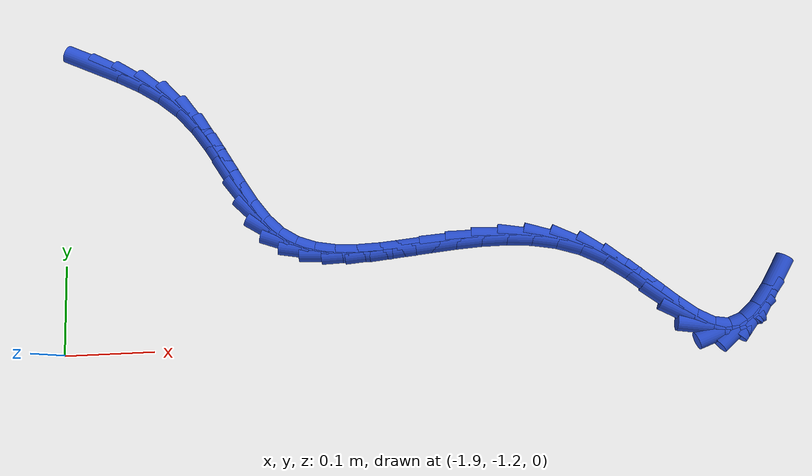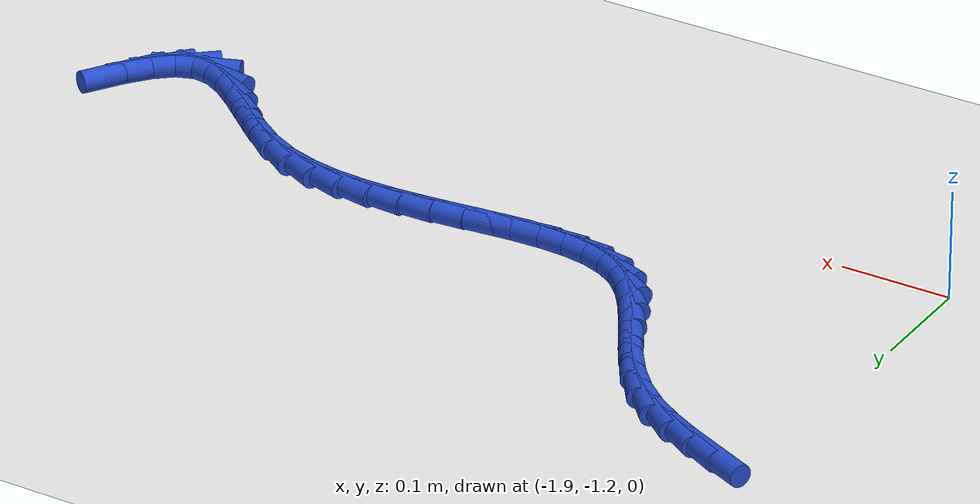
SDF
<sdf version="1.6">
 <world name="default">
  <model name="ground_plane">
   <static>1</static>
   <link name="link">
    <collision name="collision">
     <geometry><plane><normal>0 0 1</normal><size>100 100</size></plane></geometry>
     <surface><friction><ode><mu>100</mu><mu2>50</mu2></ode></friction></surface>
    </collision>
    <visual name="visual">
     <cast_shadows>0</cast_shadows>
     <geometry><plane><normal>0 0 1</normal><size>100 100</size></plane></geometry>
     <material>
      <script><uri>file://media/materials/scripts/gazebo.material</uri><name>Gazebo/WhiteGlow</name></script>
     </material>
    </visual>
   </link>
  </model>
  <model name="line">
   <link name="link_176">
    <pose>-1.8645679588360216 -0.8669915331067609 0.01 0 1.57 -0.4247493217006784</pose>
    <collision name="collision">
     <geometry><cylinder><radius>0.01</radius><length>0.08</length></cylinder></geometry>
    </collision>
    <visual name="visual">
     <material>
      <script><name>Gazebo/Blue</name><uri>file://media/materials/scripts/gazebo.material</uri></script>
     </material>
     <geometry><cylinder><radius>0.01</radius><length>0.08</length></cylinder></geometry>
    </visual>
   </link>
   <link name="link_177">
    <pose>-1.8382331646155368 -0.8789022644264692 0.01 0 1.57 -0.47703535431696337</pose>
    <collision name="collision">
     <geometry><cylinder><radius>0.01</radius><length>0.08</length></cylinder></geometry>
    </collision>
    <visual name="visual">
     <material>
      <script><name>Gazebo/Blue</name><uri>file://media/materials/scripts/gazebo.material</uri></script>
     </material>
     <geometry><cylinder><radius>0.01</radius><length>0.08</length></cylinder></geometry>
    </visual>
   </link>
   <link name="link_178">
    <pose>-1.8126612451884712 -0.8921190718512182 0.01 0 1.57 -0.5641950752193319</pose>
    <collision name="collision">
     <geometry><cylinder><radius>0.01</radius><length>0.08</length></cylinder></geometry>
    </collision>
    <visual name="visual">
     <material>
      <script><name>Gazebo/Blue</name><uri>file://media/materials/scripts/gazebo.material</uri></script>
     </material>
     <geometry><cylinder><radius>0.01</radius><length>0.08</length></cylinder></geometry>
    </visual>
   </link>
   <link name="link_179">
    <pose>-1.7886581681276514 -0.9073084349439857 0.01 0 1.57 -0.6893893840906471</pose>
    <collision name="collision">
     <geometry><cylinder><radius>0.01</radius><length>0.08</length></cylinder></geometry>
    </collision>
    <visual name="visual">
     <material>
      <script><name>Gazebo/Blue</name><uri>file://media/materials/scripts/gazebo.material</uri></script>
     </material>
     <geometry><cylinder><radius>0.01</radius><length>0.08</length></cylinder></geometry>
    </visual>
   </link>
   <link name="link_180">
    <pose>-1.7670299010059074 -0.9251368332677505 0.01 0 1.57 -0.8392473526510661</pose>
    <collision name="collision">
     <geometry><cylinder><radius>0.01</radius><length>0.08</length></cylinder></geometry>
    </collision>
    <visual name="visual">
     <material>
      <script><name>Gazebo/Blue</name><uri>file://media/materials/scripts/gazebo.material</uri></script>
     </material>
     <geometry><cylinder><radius>0.01</radius><length>0.08</length></cylinder></geometry>
    </visual>
   </link>
   <link name="link_181">
    <pose>-1.7483223331746092 -0.9459760226926984 0.01 0 1.57 -0.9537539241541084</pose>
    <collision name="collision">
     <geometry><cylinder><radius>0.01</radius><length>0.08</length></cylinder></geometry>
    </collision>
    <visual name="visual">
     <material>
      <script><name>Gazebo/Blue</name><uri>file://media/materials/scripts/gazebo.material</uri></script>
     </material>
     <geometry><cylinder><radius>0.01</radius><length>0.08</length></cylinder></geometry>
    </visual>
   </link>
   <link name="link_182">
    <pose>-1.7320041607804846 -0.9689770711077332 0.01 0 1.57 -1.020020391745977</pose>
    <collision name="collision">
     <geometry><cylinder><radius>0.01</radius><length>0.08</length></cylinder></geometry>
    </collision>
    <visual name="visual">
     <material>
      <script><name>Gazebo/Blue</name><uri>file://media/materials/scripts/gazebo.material</uri></script>
     </material>
     <geometry><cylinder><radius>0.01</radius><length>0.08</length></cylinder></geometry>
    </visual>
   </link>
   <link name="link_183">
    <pose>-1.7172652370645718 -0.9929750583485786 0.01 0 1.57 -1.0405646668804494</pose>
    <collision name="collision">
     <geometry><cylinder><radius>0.01</radius><length>0.08</length></cylinder></geometry>
    </collision>
    <visual name="visual">
     <material>
      <script><name>Gazebo/Blue</name><uri>file://media/materials/scripts/gazebo.material</uri></script>
     </material>
     <geometry><cylinder><radius>0.01</radius><length>0.08</length></cylinder></geometry>
    </visual>
   </link>
   <link name="link_184">
    <pose>-1.7032954148462254 -1.0168050637731003 0.01 0 1.57 -1.0137910978690958</pose>
    <collision name="collision">
     <geometry><cylinder><radius>0.01</radius><length>0.08</length></cylinder></geometry>
    </collision>
    <visual name="visual">
     <material>
      <script><name>Gazebo/Blue</name><uri>file://media/materials/scripts/gazebo.material</uri></script>
     </material>
     <geometry><cylinder><radius>0.01</radius><length>0.08</length></cylinder></geometry>
    </visual>
   </link>
   <link name="link_185">
    <pose>-1.689284546944802 -1.039302166739165 0.01 0 1.57 -0.9317066677133115</pose>
    <collision name="collision">
     <geometry><cylinder><radius>0.01</radius><length>0.08</length></cylinder></geometry>
    </collision>
    <visual name="visual">
     <material>
      <script><name>Gazebo/Blue</name><uri>file://media/materials/scripts/gazebo.material</uri></script>
     </material>
     <geometry><cylinder><radius>0.01</radius><length>0.08</length></cylinder></geometry>
    </visual>
   </link>
   <link name="link_186">
    <pose>-1.674422486179656 -1.0593014466046387 0.01 0 1.57 -0.7797115221578698</pose>
    <collision name="collision">
     <geometry><cylinder><radius>0.01</radius><length>0.08</length></cylinder></geometry>
    </collision>
    <visual name="visual">
     <material>
      <script><name>Gazebo/Blue</name><uri>file://media/materials/scripts/gazebo.material</uri></script>
     </material>
     <geometry><cylinder><radius>0.01</radius><length>0.08</length></cylinder></geometry>
    </visual>
   </link>
   <link name="link_187">
    <pose>-1.6578990853701436 -1.0756379827273879 0.01 0 1.57 -0.5574876637310547</pose>
    <collision name="collision">
     <geometry><cylinder><radius>0.01</radius><length>0.08</length></cylinder></geometry>
    </collision>
    <visual name="visual">
     <material>
      <script><name>Gazebo/Blue</name><uri>file://media/materials/scripts/gazebo.material</uri></script>
     </material>
     <geometry><cylinder><radius>0.01</radius><length>0.08</length></cylinder></geometry>
    </visual>
   </link>
   <link name="link_188">
    <pose>-1.6390459676303692 -1.0873920566819728 0.01 0 1.57 -0.3410835000995765</pose>
    <collision name="collision">
     <geometry><cylinder><radius>0.01</radius><length>0.08</length></cylinder></geometry>
    </collision>
    <visual name="visual">
     <material>
      <script><name>Gazebo/Blue</name><uri>file://media/materials/scripts/gazebo.material</uri></script>
     </material>
     <geometry><cylinder><radius>0.01</radius><length>0.08</length></cylinder></geometry>
    </visual>
   </link>
   <link name="link_189">
    <pose>-1.6179164219875033 -1.094892124647576 0.01 0 1.57 -0.17005681047597512</pose>
    <collision name="collision">
     <geometry><cylinder><radius>0.01</radius><length>0.08</length></cylinder></geometry>
    </collision>
    <visual name="visual">
     <material>
      <script><name>Gazebo/Blue</name><uri>file://media/materials/scripts/gazebo.material</uri></script>
     </material>
     <geometry><cylinder><radius>0.01</radius><length>0.08</length></cylinder></geometry>
    </visual>
   </link>
   <link name="link_190">
    <pose>-1.5947927900579701 -1.0988628062078818 0.01 0 1.57 -0.046917950597219815</pose>
    <collision name="collision">
     <geometry><cylinder><radius>0.01</radius><length>0.08</length></cylinder></geometry>
    </collision>
    <visual name="visual">
     <material>
      <script><name>Gazebo/Blue</name><uri>file://media/materials/scripts/gazebo.material</uri></script>
     </material>
     <geometry><cylinder><radius>0.01</radius><length>0.08</length></cylinder></geometry>
    </visual>
   </link>
   <link name="link_191">
    <pose>-1.5699575068922942 -1.10002888254776 0.01 0 1.57 0.03477619339295823</pose>
    <collision name="collision">
     <geometry><cylinder><radius>0.01</radius><length>0.08</length></cylinder></geometry>
    </collision>
    <visual name="visual">
     <material>
      <script><name>Gazebo/Blue</name><uri>file://media/materials/scripts/gazebo.material</uri></script>
     </material>
     <geometry><cylinder><radius>0.01</radius><length>0.08</length></cylinder></geometry>
    </visual>
   </link>
   <link name="link_192">
    <pose>-1.543693007540998 -1.0991151348520802 0.01 0 1.57 0.08258026697627965</pose>
    <collision name="collision">
     <geometry><cylinder><radius>0.01</radius><length>0.08</length></cylinder></geometry>
    </collision>
    <visual name="visual">
     <material>
      <script><name>Gazebo/Blue</name><uri>file://media/materials/scripts/gazebo.material</uri></script>
     </material>
     <geometry><cylinder><radius>0.01</radius><length>0.08</length></cylinder></geometry>
    </visual>
   </link>
   <link name="link_193">
    <pose>-1.5162817270546047 -1.0968463443057126 0.01 0 1.57 0.10217129820969985</pose>
    <collision name="collision">
     <geometry><cylinder><radius>0.01</radius><length>0.08</length></cylinder></geometry>
    </collision>
    <visual name="visual">
     <material>
      <script><name>Gazebo/Blue</name><uri>file://media/materials/scripts/gazebo.material</uri></script>
     </material>
     <geometry><cylinder><radius>0.01</radius><length>0.08</length></cylinder></geometry>
    </visual>
   </link>
   <link name="link_194">
    <pose>-1.4880061004836365 -1.0939472920935263 0.01 0 1.57 0.09688119685094375</pose>
    <collision name="collision">
     <geometry><cylinder><radius>0.01</radius><length>0.08</length></cylinder></geometry>
    </collision>
    <visual name="visual">
     <material>
      <script><name>Gazebo/Blue</name><uri>file://media/materials/scripts/gazebo.material</uri></script>
     </material>
     <geometry><cylinder><radius>0.01</radius><length>0.08</length></cylinder></geometry>
    </visual>
   </link>
   <link name="link_195">
    <pose>-1.4591485628786163 -1.0911427594003917 0.01 0 1.57 0.06798270654149806</pose>
    <collision name="collision">
     <geometry><cylinder><radius>0.01</radius><length>0.08</length></cylinder></geometry>
    </collision>
    <visual name="visual">
     <material>
      <script><name>Gazebo/Blue</name><uri>file://media/materials/scripts/gazebo.material</uri></script>
     </material>
     <geometry><cylinder><radius>0.01</radius><length>0.08</length></cylinder></geometry>
    </visual>
   </link>
   <link name="link_196">
    <pose>-1.4299915492900677 -1.089157527411178 0.01 0 1.57 0.015120163743474472</pose>
    <collision name="collision">
     <geometry><cylinder><radius>0.01</radius><length>0.08</length></cylinder></geometry>
    </collision>
    <visual name="visual">
     <material>
      <script><name>Gazebo/Blue</name><uri>file://media/materials/scripts/gazebo.material</uri></script>
     </material>
     <geometry><cylinder><radius>0.01</radius><length>0.08</length></cylinder></geometry>
    </visual>
   </link>
   <link name="link_197">
    <pose>-1.4008174947685128 -1.0887163773107553 0.01 0 1.57 -0.06313967868216075</pose>
    <collision name="collision">
     <geometry><cylinder><radius>0.01</radius><length>0.08</length></cylinder></geometry>
    </collision>
    <visual name="visual">
     <material>
      <script><name>Gazebo/Blue</name><uri>file://media/materials/scripts/gazebo.material</uri></script>
     </material>
     <geometry><cylinder><radius>0.01</radius><length>0.08</length></cylinder></geometry>
    </visual>
   </link>
   <link name="link_198">
    <pose>-1.3719088343644745 -1.0905440902839927 0.01 0 1.57 -0.16839070277456022</pose>
    <collision name="collision">
     <geometry><cylinder><radius>0.01</radius><length>0.08</length></cylinder></geometry>
    </collision>
    <visual name="visual">
     <material>
      <script><name>Gazebo/Blue</name><uri>file://media/materials/scripts/gazebo.material</uri></script>
     </material>
     <geometry><cylinder><radius>0.01</radius><length>0.08</length></cylinder></geometry>
    </visual>
   </link>
   <link name="link_199">
    <pose>-1.3435480031284759 -1.0953654475157613 0.01 0 1.57 -0.30078152388809726</pose>
    <collision name="collision">
     <geometry><cylinder><radius>0.01</radius><length>0.08</length></cylinder></geometry>
    </collision>
    <visual name="visual">
     <material>
      <script><name>Gazebo/Blue</name><uri>file://media/materials/scripts/gazebo.material</uri></script>
     </material>
     <geometry><cylinder><radius>0.01</radius><length>0.08</length></cylinder></geometry>
    </visual>
   </link>
   <link name="link_200">
    <pose>-1.3160174361110402 -1.1039052301909291 0.01 0 1.57 -0.456616035102746</pose>
    <collision name="collision">
     <geometry><cylinder><radius>0.01</radius><length>0.08</length></cylinder></geometry>
    </collision>
    <visual name="visual">
     <material>
      <script><name>Gazebo/Blue</name><uri>file://media/materials/scripts/gazebo.material</uri></script>
     </material>
     <geometry><cylinder><radius>0.01</radius><length>0.08</length></cylinder></geometry>
    </visual>
   </link>
   <link name="link_201">
    <pose>-1.2895991016323423 -1.1168830040575306 0.01 0 1.57 -0.6007472446503282</pose>
    <collision name="collision">
     <geometry><cylinder><radius>0.01</radius><length>0.08</length></cylinder></geometry>
    </collision>
    <visual name="visual">
     <material>
      <script><name>Gazebo/Blue</name><uri>file://media/materials/scripts/gazebo.material</uri></script>
     </material>
     <geometry><cylinder><radius>0.01</radius><length>0.08</length></cylinder></geometry>
    </visual>
   </link>
   <link name="link_202">
    <pose>-1.264491665801867 -1.1340874817057311 0.01 0 1.57 -0.6798920212782485</pose>
    <collision name="collision">
     <geometry><cylinder><radius>0.01</radius><length>0.08</length></cylinder></geometry>
    </collision>
    <visual name="visual">
     <material>
      <script><name>Gazebo/Blue</name><uri>file://media/materials/scripts/gazebo.material</uri></script>
     </material>
     <geometry><cylinder><radius>0.01</radius><length>0.08</length></cylinder></geometry>
    </visual>
   </link>
   <link name="link_203">
    <pose>-1.240715088223798 -1.153310435747564 0.01 0 1.57 -0.6965122778812215</pose>
    <collision name="collision">
     <geometry><cylinder><radius>0.01</radius><length>0.08</length></cylinder></geometry>
    </collision>
    <visual name="visual">
     <material>
      <script><name>Gazebo/Blue</name><uri>file://media/materials/scripts/gazebo.material</uri></script>
     </material>
     <geometry><cylinder><radius>0.01</radius><length>0.08</length></cylinder></geometry>
    </visual>
   </link>
   <link name="link_204">
    <pose>-1.2182662192621851 -1.1720854066428175 0.01 0 1.57 -0.6440249087622897</pose>
    <collision name="collision">
     <geometry><cylinder><radius>0.01</radius><length>0.08</length></cylinder></geometry>
    </collision>
    <visual name="visual">
     <material>
      <script><name>Gazebo/Blue</name><uri>file://media/materials/scripts/gazebo.material</uri></script>
     </material>
     <geometry><cylinder><radius>0.01</radius><length>0.08</length></cylinder></geometry>
    </visual>
   </link>
   <link name="link_205">
    <pose>-1.1971419092810784 -1.1879459348512806 0.01 0 1.57 -0.4867310884943627</pose>
    <collision name="collision">
     <geometry><cylinder><radius>0.01</radius><length>0.08</length></cylinder></geometry>
    </collision>
    <visual name="visual">
     <material>
      <script><name>Gazebo/Blue</name><uri>file://media/materials/scripts/gazebo.material</uri></script>
     </material>
     <geometry><cylinder><radius>0.01</radius><length>0.08</length></cylinder></geometry>
    </visual>
   </link>
   <link name="link_206">
    <pose>-1.1773390086445288 -1.1984255608327428 0.01 0 1.57 -0.14190896993703586</pose>
    <collision name="collision">
     <geometry><cylinder><radius>0.01</radius><length>0.08</length></cylinder></geometry>
    </collision>
    <visual name="visual">
     <material>
      <script><name>Gazebo/Blue</name><uri>file://media/materials/scripts/gazebo.material</uri></script>
     </material>
     <geometry><cylinder><radius>0.01</radius><length>0.08</length></cylinder></geometry>
    </visual>
   </link>
   <link name="link_207">
    <pose>-1.1588537382424478 -1.2010665385009227 0.01 0 1.57 0.35545439113304267</pose>
    <collision name="collision">
     <geometry><cylinder><radius>0.01</radius><length>0.08</length></cylinder></geometry>
    </collision>
    <visual name="visual">
     <material>
      <script><name>Gazebo/Blue</name><uri>file://media/materials/scripts/gazebo.material</uri></script>
     </material>
     <geometry><cylinder><radius>0.01</radius><length>0.08</length></cylinder></geometry>
    </visual>
   </link>
   <link name="link_208">
    <pose>-1.1415921938595956 -1.1946586725480028 0.01 0 1.57 0.7138416624622913</pose>
    <collision name="collision">
     <geometry><cylinder><radius>0.01</radius><length>0.08</length></cylinder></geometry>
    </collision>
    <visual name="visual">
     <material>
      <script><name>Gazebo/Blue</name><uri>file://media/materials/scripts/gazebo.material</uri></script>
     </material>
     <geometry><cylinder><radius>0.01</radius><length>0.08</length></cylinder></geometry>
    </visual>
   </link>
   <link name="link_209">
    <pose>-1.125277374299766 -1.1805262754568717 0.01 0 1.57 0.9117099139644071</pose>
    <collision name="collision">
     <geometry><cylinder><radius>0.01</radius><length>0.08</length></cylinder></geometry>
    </collision>
    <visual name="visual">
     <material>
      <script><name>Gazebo/Blue</name><uri>file://media/materials/scripts/gazebo.material</uri></script>
     </material>
     <geometry><cylinder><radius>0.01</radius><length>0.08</length></cylinder></geometry>
    </visual>
   </link>
   <link name="link_210">
    <pose>-1.1096100712845147 -1.1603010597704138 0.01 0 1.57 1.0154064024203342</pose>
    <collision name="collision">
     <geometry><cylinder><radius>0.01</radius><length>0.08</length></cylinder></geometry>
    </collision>
    <visual name="visual">
     <material>
      <script><name>Gazebo/Blue</name><uri>file://media/materials/scripts/gazebo.material</uri></script>
     </material>
     <geometry><cylinder><radius>0.01</radius><length>0.08</length></cylinder></geometry>
    </visual>
   </link>
  </model>
 </world>
</sdf>
